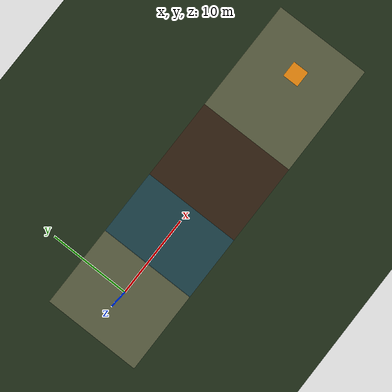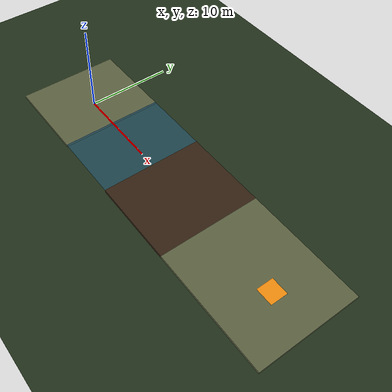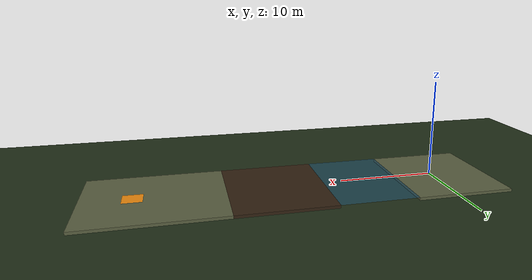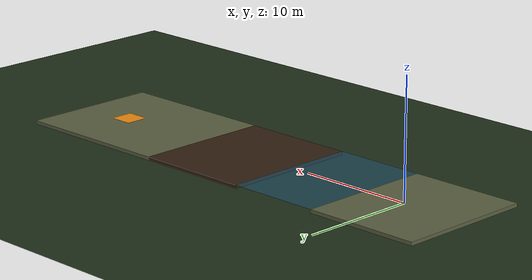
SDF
<?xml version="1.0"?>
<!-- Integration world derived from transition_test; actuator commands come only from ROS.
     The vehicle (Version 1 or 2) is spawned by sim.launch.py. -->
<sdf version="1.9">
  <world name="integration_test">
    <physics name="1ms" type="dart">
      <max_step_size>0.001</max_step_size>
      <real_time_factor>1.0</real_time_factor>
      <dart><collision_detector>bullet</collision_detector></dart>
    </physics>
    <gravity>0 0 -9.81</gravity>
    <spherical_coordinates>
      <surface_model>EARTH_WGS84</surface_model>
      <latitude_deg>1.4466</latitude_deg><longitude_deg>103.7300</longitude_deg>
      <elevation>0</elevation><heading_deg>0</heading_deg>
    </spherical_coordinates>

    <plugin filename="gz-sim-physics-system" name="gz::sim::systems::Physics"/>
    <plugin filename="gz-sim-user-commands-system" name="gz::sim::systems::UserCommands"/>
    <plugin filename="gz-sim-scene-broadcaster-system" name="gz::sim::systems::SceneBroadcaster"/>
    <plugin filename="gz-sim-imu-system" name="gz::sim::systems::Imu"/>
    <plugin filename="gz-sim-navsat-system" name="gz::sim::systems::NavSat"/>
    <plugin filename="gz-sim-sensors-system" name="gz::sim::systems::Sensors">
      <render_engine>ogre2</render_engine>
    </plugin>
    <plugin filename="gz-sim-buoyancy-system" name="gz::sim::systems::Buoyancy">
      <graded_buoyancy>
        <default_density>1000</default_density>
        <density_change><above_depth>0.0</above_depth><density>1.2</density></density_change>
      </graded_buoyancy><enable>hovercraft::base_link</enable><enable>hovercraft::skirt</enable>
      <enable>hovercraft_v2::base_link</enable><enable>hovercraft_v2::skirt</enable>
    </plugin>
    <plugin filename="tidal_vehicle_plugins" name="hover::TerrainZones">
      <ground_height>0.0</ground_height>
      <zone><name>channel</name><type>WATER</type><min>4 -6</min><max>12 6</max><level>0.0</level></zone>
      <zone><name>mudflat</name><type>MUD</type><min>12 -6</min><max>22 6</max></zone>
    </plugin>

    <scene><ambient>0.5 0.5 0.5 1</ambient><background>0.7 0.8 0.9 1</background><grid>false</grid></scene>
    <light type="directional" name="sun">
      <cast_shadows>true</cast_shadows><pose>0 0 10 0 0 0</pose>
      <diffuse>0.9 0.9 0.85 1</diffuse><specular>0.2 0.2 0.2 1</specular>
      <direction>-0.4 0.3 -0.9</direction>
    </light>

    <model name="launch">
      <static>true</static>
      <pose>-1.0 0.0 -0.15 0 0 0</pose>
      <link name="link">
        <collision name="c">
          <geometry><box><size>10 12 0.3</size></box></geometry>
          <surface><friction><ode><mu>1.0</mu><mu2>1.0</mu2></ode></friction></surface>
        </collision>
        <visual name="v">
          <geometry><box><size>10 12 0.3</size></box></geometry>
          <material><ambient>0.36 0.38 0.26 1</ambient><diffuse>0.36 0.38 0.26 1</diffuse>
            <specular>0.05 0.05 0.05 1</specular></material>
        </visual>
      </link>
    </model>
    <model name="channel_bed">
      <static>true</static>
      <pose>8.0 0.0 -0.6 0 0 0</pose>
      <link name="link">
        <collision name="c">
          <geometry><box><size>8 12 0.3</size></box></geometry>
          <surface><friction><ode><mu>0.3</mu><mu2>0.3</mu2></ode></friction></surface>
        </collision>
        <visual name="v">
          <geometry><box><size>8 12 0.3</size></box></geometry>
          <material><ambient>0.16 0.12 0.08 1</ambient><diffuse>0.16 0.12 0.08 1</diffuse>
            <specular>0.05 0.05 0.05 1</specular></material>
        </visual>
      </link>
    </model>
    <model name="channel_water"><static>true</static><pose>8.0 0.0 0.0 0 0 0</pose>
      <link name="link"><visual name="v"><geometry><box><size>8 12 0.01</size></box></geometry>
        <transparency>0.35</transparency>
        <material><ambient>0.15 0.35 0.45 0.65</ambient><diffuse>0.15 0.35 0.45 0.65</diffuse><specular>0.6 0.6 0.6 1</specular></material>
      </visual></link></model>
    <model name="mudflat">
      <static>true</static>
      <pose>17.0 0.0 -0.15 0 0 0</pose>
      <link name="link">
        <collision name="c">
          <geometry><box><size>10 12 0.3</size></box></geometry>
          <surface><friction><ode><mu>0.08</mu><mu2>0.08</mu2></ode></friction></surface>
        </collision>
        <visual name="v">
          <geometry><box><size>10 12 0.3</size></box></geometry>
          <material><ambient>0.20 0.13 0.07 1</ambient><diffuse>0.20 0.13 0.07 1</diffuse>
            <specular>0.3 0.3 0.3 1</specular></material>
        </visual>
      </link>
    </model>
    <model name="bank">
      <static>true</static>
      <pose>29.0 0.0 -0.15 0 0 0</pose>
      <link name="link">
        <collision name="c">
          <geometry><box><size>14 12 0.3</size></box></geometry>
          <surface><friction><ode><mu>1.0</mu><mu2>1.0</mu2></ode></friction></surface>
        </collision>
        <visual name="v">
          <geometry><box><size>14 12 0.3</size></box></geometry>
          <material><ambient>0.36 0.38 0.26 1</ambient><diffuse>0.36 0.38 0.26 1</diffuse>
            <specular>0.05 0.05 0.05 1</specular></material>
        </visual>
      </link>
    </model>
    <model name="goal_pad">
      <static>true</static>
      <pose>31.0 0.0 -0.001 0 0 0</pose>
      <link name="link">
        <collision name="c">
          <geometry><box><size>2 2 0.01</size></box></geometry>
          <surface><friction><ode><mu>1.0</mu><mu2>1.0</mu2></ode></friction></surface>
        </collision>
        <visual name="v">
          <geometry><box><size>2 2 0.01</size></box></geometry>
          <material><ambient>0.95 0.55 0.05 1</ambient><diffuse>0.95 0.55 0.05 1</diffuse>
            <specular>0.05 0.05 0.05 1</specular></material>
        </visual>
      </link>
    </model>
    <!-- The vehicle is spawned at HOME by sim.launch.py (vehicle:=v1 | v2). -->
    <model name="backdrop"><static>true</static><pose>10 0 -0.32 0 0 0</pose>
      <link name="link"><visual name="v"><geometry><box><size>300 300 0.02</size></box></geometry>
        <material><ambient>0.13 0.19 0.10 1</ambient><diffuse>0.13 0.19 0.10 1</diffuse></material></visual></link></model>
  </world>
</sdf>
